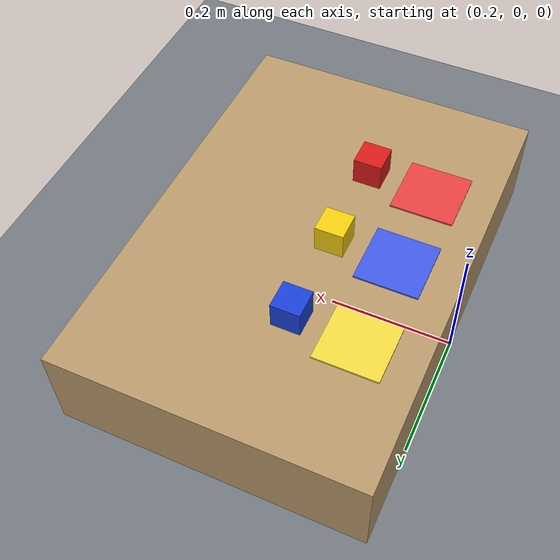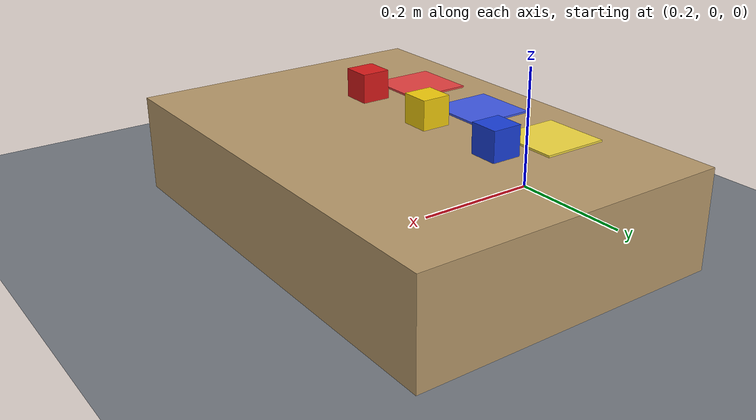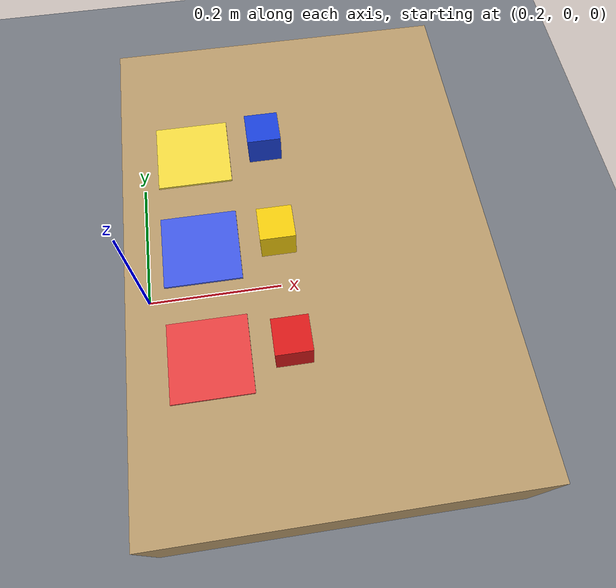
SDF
<?xml version="1.0" ?>
<sdf version="1.9">
  <world name="ur3_workcell">
    <physics name="1ms" type="ignored">
      <max_step_size>0.001</max_step_size><real_time_factor>1.0</real_time_factor>
    </physics>
    <plugin filename="ignition-gazebo-physics-system" name="ignition::gazebo::systems::Physics"/>
    <plugin filename="ignition-gazebo-user-commands-system" name="ignition::gazebo::systems::UserCommands"/>
    <plugin filename="ignition-gazebo-scene-broadcaster-system" name="ignition::gazebo::systems::SceneBroadcaster"/>
    <plugin filename="ignition-gazebo-sensors-system" name="ignition::gazebo::systems::Sensors">
      <render_engine>ogre2</render_engine>
    </plugin>

    <light type="directional" name="sun">
      <cast_shadows>true</cast_shadows>
      <pose>0 0 10 0 0 0</pose>
      <diffuse>0.9 0.9 0.9 1</diffuse><specular>0.25 0.25 0.25 1</specular>
      <direction>-0.4 0.3 -0.9</direction>
    </light>

    <model name="ground_plane">
      <static>true</static>
      <link name="link">
        <collision name="collision"><geometry><plane><normal>0 0 1</normal><size>20 20</size></plane></geometry></collision>
        <visual name="visual"><geometry><plane><normal>0 0 1</normal><size>20 20</size></plane></geometry>
          <material><ambient>0.45 0.47 0.5 1</ambient><diffuse>0.45 0.47 0.5 1</diffuse></material>
        </visual>
      </link>
    </model>

    <!-- Ban thao tac: mat tren o z = 0.15 m, nam truoc robot -->
    <model name="work_table">
      <pose>0.44 0 0.075 0 0 0</pose>
      <static>true</static>
      <link name="link">
        <collision name="collision"><geometry><box><size>0.48 0.70 0.15</size></box></geometry></collision>
        <visual name="visual"><geometry><box><size>0.48 0.70 0.15</size></box></geometry>
          <material><ambient>0.72 0.60 0.42 1</ambient><diffuse>0.72 0.60 0.42 1</diffuse></material>
        </visual>
      </link>
    </model>

    <model name="zone_a">
      <pose>0.30 -0.15 0.1515 0 0 0</pose>
      <static>true</static>
      <link name="link">
        <visual name="visual"><geometry><box><size>0.10 0.10 0.003</size></box></geometry>
          <material><ambient>0.9 0.25 0.25 0.9</ambient><diffuse>0.9 0.25 0.25 0.9</diffuse></material>
        </visual>
      </link>
    </model>
    <model name="zone_b">
      <pose>0.30 0.0 0.1515 0 0 0</pose>
      <static>true</static>
      <link name="link">
        <visual name="visual"><geometry><box><size>0.10 0.10 0.003</size></box></geometry>
          <material><ambient>0.25 0.35 0.9 0.9</ambient><diffuse>0.25 0.35 0.9 0.9</diffuse></material>
        </visual>
      </link>
    </model>
    <model name="zone_c">
      <pose>0.30 0.15 0.1515 0 0 0</pose>
      <static>true</static>
      <link name="link">
        <visual name="visual"><geometry><box><size>0.10 0.10 0.003</size></box></geometry>
          <material><ambient>0.95 0.85 0.25 0.9</ambient><diffuse>0.95 0.85 0.25 0.9</diffuse></material>
        </visual>
      </link>
    </model>

    <model name="red_cube">
      <pose>0.40 -0.15 0.1725 0 0 0</pose>
      <static>false</static>
      <link name="link">
        <gravity>false</gravity>
        <inertial><mass>0.05</mass>
          <inertia><ixx>1.7e-5</ixx><iyy>1.7e-5</iyy><izz>1.7e-5</izz>
                   <ixy>0</ixy><ixz>0</ixz><iyz>0</iyz></inertia>
        </inertial>
        <collision name="collision"><geometry><box><size>0.045 0.045 0.045</size></box></geometry>
          <surface><contact><collide_bitmask>0x00</collide_bitmask></contact>
            <friction><ode><mu>1.2</mu><mu2>1.2</mu2></ode></friction></surface>
        </collision>
        <visual name="visual"><geometry><box><size>0.045 0.045 0.045</size></box></geometry>
          <material><ambient>0.85 0.1 0.1 1</ambient><diffuse>0.85 0.1 0.1 1</diffuse>
                    <specular>0.2 0.2 0.2 1</specular></material>
        </visual>
      </link>
    </model>
    <model name="yellow_cube">
      <pose>0.40 0.0 0.1725 0 0 0</pose>
      <static>false</static>
      <link name="link">
        <gravity>false</gravity>
        <inertial><mass>0.05</mass>
          <inertia><ixx>1.7e-5</ixx><iyy>1.7e-5</iyy><izz>1.7e-5</izz>
                   <ixy>0</ixy><ixz>0</ixz><iyz>0</iyz></inertia>
        </inertial>
        <collision name="collision"><geometry><box><size>0.045 0.045 0.045</size></box></geometry>
          <surface><contact><collide_bitmask>0x00</collide_bitmask></contact>
            <friction><ode><mu>1.2</mu><mu2>1.2</mu2></ode></friction></surface>
        </collision>
        <visual name="visual"><geometry><box><size>0.045 0.045 0.045</size></box></geometry>
          <material><ambient>0.95 0.8 0.05 1</ambient><diffuse>0.95 0.8 0.05 1</diffuse>
                    <specular>0.2 0.2 0.2 1</specular></material>
        </visual>
      </link>
    </model>
    <model name="blue_cube">
      <pose>0.40 0.15 0.1725 0 0 0</pose>
      <static>false</static>
      <link name="link">
        <gravity>false</gravity>
        <inertial><mass>0.05</mass>
          <inertia><ixx>1.7e-5</ixx><iyy>1.7e-5</iyy><izz>1.7e-5</izz>
                   <ixy>0</ixy><ixz>0</ixz><iyz>0</iyz></inertia>
        </inertial>
        <collision name="collision"><geometry><box><size>0.045 0.045 0.045</size></box></geometry>
          <surface><contact><collide_bitmask>0x00</collide_bitmask></contact>
            <friction><ode><mu>1.2</mu><mu2>1.2</mu2></ode></friction></surface>
        </collision>
        <visual name="visual"><geometry><box><size>0.045 0.045 0.045</size></box></geometry>
          <material><ambient>0.1 0.25 0.85 1</ambient><diffuse>0.1 0.25 0.85 1</diffuse>
                    <specular>0.2 0.2 0.2 1</specular></material>
        </visual>
      </link>
    </model>
  </world>
</sdf>
